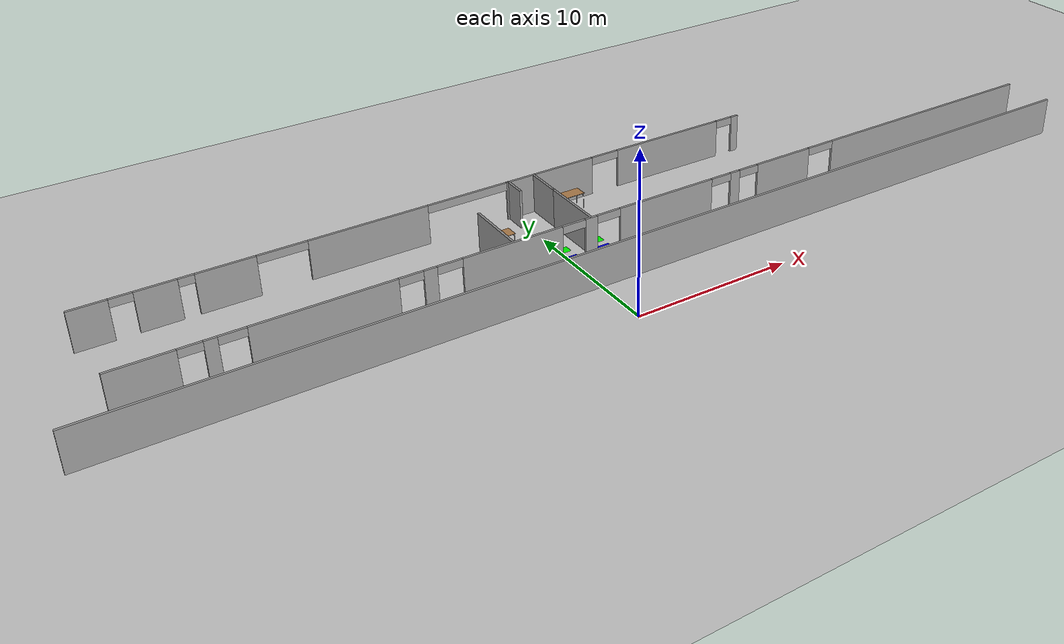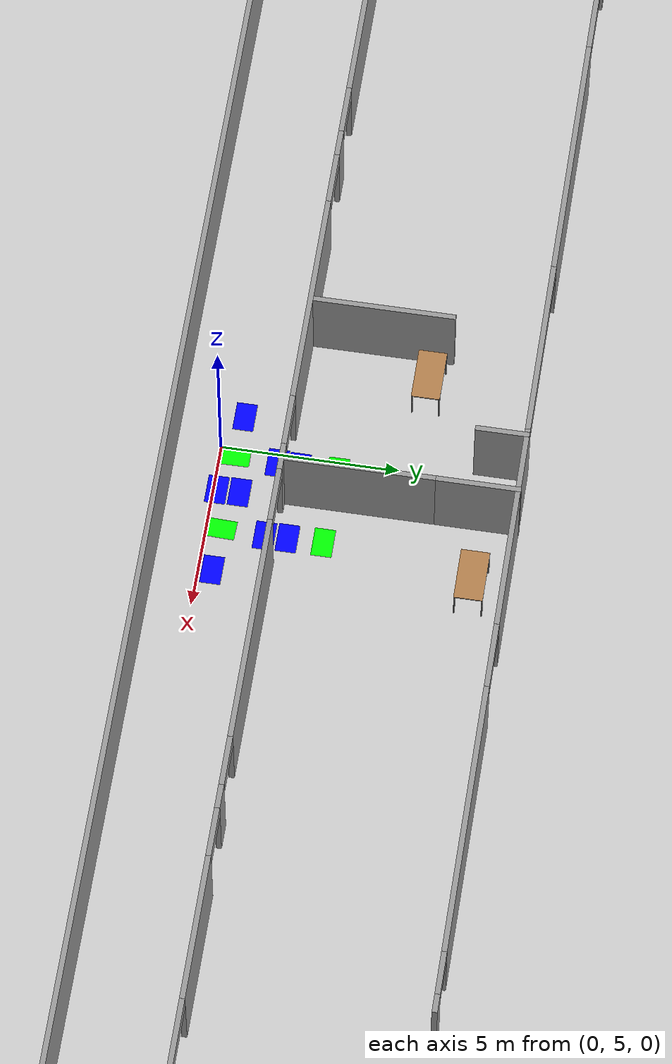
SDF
<sdf version="1.6">
 <world name="default">
  <model name="ground_plane">
   <pose>0 0 0.001 0 -0 0</pose>
   <static>1</static>
   <link name="link">
    <collision name="collision">
     <geometry><plane><normal>0 0 1</normal><size>100 100</size></plane></geometry>
     <surface><friction><ode><mu>100</mu><mu2>50</mu2></ode></friction></surface>
    </collision>
    <visual name="visual">
     <cast_shadows>0</cast_shadows>
     <geometry><plane><normal>0 0 1</normal><size>100 100</size></plane></geometry>
     <material>
      <script><uri>file://media/materials/scripts/gazebo.material</uri><name>Gazebo/Grey</name></script>
     </material>
    </visual>
   </link>
  </model>
  <model name="table_7">
   <static>1</static>
   <link name="link">
    <collision name="surface">
     <pose>0 0 1 0 -0 0</pose>
     <geometry><box><size>1.5 0.8 0.03</size></box></geometry>
     <surface><friction><ode><mu>0.6</mu><mu2>0.6</mu2></ode></friction></surface>
    </collision>
    <visual name="visual1">
     <pose>0 0 1 0 -0 0</pose>
     <geometry><box><size>1.5 0.8 0.03</size></box></geometry>
     <material>
      <script><uri>file://media/materials/scripts/gazebo.material</uri><name>Gazebo/Wood</name></script>
     </material>
    </visual>
    <collision name="front_left_leg">
     <pose>0.68 0.38 0.5 0 -0 0</pose>
     <geometry><cylinder><radius>0.02</radius><length>1</length></cylinder></geometry>
    </collision>
    <visual name="front_left_leg">
     <pose>0.68 0.38 0.5 0 -0 0</pose>
     <geometry><cylinder><radius>0.02</radius><length>1</length></cylinder></geometry>
     <material>
      <script><uri>file://media/materials/scripts/gazebo.material</uri><name>Gazebo/Grey</name></script>
     </material>
    </visual>
    <collision name="front_right_leg">
     <pose>0.68 -0.38 0.5 0 -0 0</pose>
     <geometry><cylinder><radius>0.02</radius><length>1</length></cylinder></geometry>
    </collision>
    <visual name="front_right_leg">
     <pose>0.68 -0.38 0.5 0 -0 0</pose>
     <geometry><cylinder><radius>0.02</radius><length>1</length></cylinder></geometry>
     <material>
      <script><uri>file://media/materials/scripts/gazebo.material</uri><name>Gazebo/Grey</name></script>
     </material>
    </visual>
    <collision name="back_right_leg">
     <pose>-0.68 -0.38 0.5 0 -0 0</pose>
     <geometry><cylinder><radius>0.02</radius><length>1</length></cylinder></geometry>
    </collision>
    <visual name="back_right_leg">
     <pose>-0.68 -0.38 0.5 0 -0 0</pose>
     <geometry><cylinder><radius>0.02</radius><length>1</length></cylinder></geometry>
     <material>
      <script><uri>file://media/materials/scripts/gazebo.material</uri><name>Gazebo/Grey</name></script>
     </material>
    </visual>
    <collision name="back_left_leg">
     <pose>-0.68 0.38 0.5 0 -0 0</pose>
     <geometry><cylinder><radius>0.02</radius><length>1</length></cylinder></geometry>
    </collision>
    <visual name="back_left_leg">
     <pose>-0.68 0.38 0.5 0 -0 0</pose>
     <geometry><cylinder><radius>0.02</radius><length>1</length></cylinder></geometry>
     <material>
      <script><uri>file://media/materials/scripts/gazebo.material</uri><name>Gazebo/Grey</name></script>
     </material>
    </visual>
   </link>
   <pose>-2.6011 10.4538 0.001 0 -0 0</pose>
  </model>
  <model name="table_10">
   <static>1</static>
   <link name="link">
    <collision name="surface">
     <pose>0 0 1 0 -0 0</pose>
     <geometry><box><size>1.5 0.8 0.03</size></box></geometry>
     <surface><friction><ode><mu>0.6</mu><mu2>0.6</mu2></ode></friction></surface>
    </collision>
    <visual name="visual1">
     <pose>0 0 1 0 -0 0</pose>
     <geometry><box><size>1.5 0.8 0.03</size></box></geometry>
     <material>
      <script><uri>file://media/materials/scripts/gazebo.material</uri><name>Gazebo/Wood</name></script>
     </material>
    </visual>
    <collision name="front_left_leg">
     <pose>0.68 0.38 0.5 0 -0 0</pose>
     <geometry><cylinder><radius>0.02</radius><length>1</length></cylinder></geometry>
    </collision>
    <visual name="front_left_leg">
     <pose>0.68 0.38 0.5 0 -0 0</pose>
     <geometry><cylinder><radius>0.02</radius><length>1</length></cylinder></geometry>
     <material>
      <script><uri>file://media/materials/scripts/gazebo.material</uri><name>Gazebo/Grey</name></script>
     </material>
    </visual>
    <collision name="front_right_leg">
     <pose>0.68 -0.38 0.5 0 -0 0</pose>
     <geometry><cylinder><radius>0.02</radius><length>1</length></cylinder></geometry>
    </collision>
    <visual name="front_right_leg">
     <pose>0.68 -0.38 0.5 0 -0 0</pose>
     <geometry><cylinder><radius>0.02</radius><length>1</length></cylinder></geometry>
     <material>
      <script><uri>file://media/materials/scripts/gazebo.material</uri><name>Gazebo/Grey</name></script>
     </material>
    </visual>
    <collision name="back_right_leg">
     <pose>-0.68 -0.38 0.5 0 -0 0</pose>
     <geometry><cylinder><radius>0.02</radius><length>1</length></cylinder></geometry>
    </collision>
    <visual name="back_right_leg">
     <pose>-0.68 -0.38 0.5 0 -0 0</pose>
     <geometry><cylinder><radius>0.02</radius><length>1</length></cylinder></geometry>
     <material>
      <script><uri>file://media/materials/scripts/gazebo.material</uri><name>Gazebo/Grey</name></script>
     </material>
    </visual>
    <collision name="back_left_leg">
     <pose>-0.68 0.38 0.5 0 -0 0</pose>
     <geometry><cylinder><radius>0.02</radius><length>1</length></cylinder></geometry>
    </collision>
    <visual name="back_left_leg">
     <pose>-0.68 0.38 0.5 0 -0 0</pose>
     <geometry><cylinder><radius>0.02</radius><length>1</length></cylinder></geometry>
     <material>
      <script><uri>file://media/materials/scripts/gazebo.material</uri><name>Gazebo/Grey</name></script>
     </material>
    </visual>
   </link>
   <pose>3.46371 12.5183 0.001 0 -0 0</pose>
  </model>
  <model name="corridor_14">
   <link name="link">
    <pose>0 0 0.001 0 -0 0</pose>
    <inertial>
     <mass>0.0352517</mass>
     <inertia>
      <ixx>0.00099707</ixx>
      <ixy>0</ixy>
      <ixz>0</ixz>
      <iyy>0.00220147</iyy>
      <iyz>0</iyz>
      <izz>0.0031692</izz>
     </inertia>
     <pose>0 0 0.001 0 -0 0</pose>
    </inertial>
    <visual name="visual">
     <geometry><box><size>0.862743 0.578289 1e-06</size></box></geometry>
     <material>
      <script><name>Gazebo/Grey</name><uri>file://media/materials/scripts/gazebo.material</uri></script>
      <ambient>0 1 0 1</ambient>
      <diffuse>0 1 0 1</diffuse>
      <specular>0 1 0 1</specular>
      <emissive>0 1 0 1</emissive>
      <shader type="vertex"><normal_map>__default__</normal_map></shader>
     </material>
     <pose>0 0 0.001 0 -0 0</pose>
    </visual>
    <collision name="collision">
     <pose>0 0 0.001 0 -0 0</pose>
     <geometry><box><size>0.862743 0.578289 0.000477</size></box></geometry>
     <surface>
      <friction>
       <ode><mu>1</mu><mu2>1</mu2><fdir1>0 0 0</fdir1><slip1>0</slip1><slip2>0</slip2></ode>
       <torsional>
        <coefficient>1</coefficient>
        <patch_radius>0</patch_radius>
        <surface_radius>0</surface_radius>
        <use_patch_radius>1</use_patch_radius>
        <ode><slip>0</slip></ode>
       </torsional>
      </friction>
      <bounce><restitution_coefficient>0</restitution_coefficient><threshold>1e+06</threshold></bounce>
      <contact>
       <collide_without_contact>0</collide_without_contact>
       <collide_without_contact_bitmask>1</collide_without_contact_bitmask>
       <collide_bitmask>1</collide_bitmask>
       <ode>
        <soft_cfm>0</soft_cfm>
        <soft_erp>0.2</soft_erp>
        <kp>1e+13</kp>
        <kd>1</kd>
        <max_vel>0.01</max_vel>
        <min_depth>0</min_depth>
       </ode>
       <bullet>
        <split_impulse>1</split_impulse>
        <split_impulse_penetration_threshold>-0.01</split_impulse_penetration_threshold>
        <soft_cfm>0</soft_cfm>
        <soft_erp>0.2</soft_erp>
        <kp>1e+13</kp>
        <kd>1</kd>
       </bullet>
      </contact>
     </surface>
    </collision>
   </link>
   <static>1</static>
   <pose>2.55201 5.40625 0 0 0 -1.60524</pose>
  </model>
  <model name="intersection_24">
   <link name="link">
    <pose>0 0 0.001 0 -0 0</pose>
    <inertial>
     <mass>0.0352517</mass>
     <inertia>
      <ixx>0.000997067</ixx>
      <ixy>0</ixy>
      <ixz>0</ixz>
      <iyy>0.00220147</iyy>
      <iyz>0</iyz>
      <izz>0.0031692</izz>
     </inertia>
     <pose>0 0 0.001 0 -0 0</pose>
    </inertial>
    <visual name="visual">
     <geometry><box><size>0.862743 0.578289 1e-06</size></box></geometry>
     <material>
      <script><name>Gazebo/Grey</name><uri>file://media/materials/scripts/gazebo.material</uri></script>
      <ambient>0 0 1 1</ambient>
      <diffuse>0 0 1 1</diffuse>
      <specular>0 0 1 1</specular>
      <emissive>0 0 1 1</emissive>
      <shader type="vertex"><normal_map>__default__</normal_map></shader>
     </material>
     <pose>0 0 0.001 0 -0 0</pose>
    </visual>
    <collision name="collision">
     <pose>0 0 0.001 0 -0 0</pose>
     <geometry><box><size>0.862743 0.578289 0.000477</size></box></geometry>
     <surface>
      <friction>
       <ode><mu>1</mu><mu2>1</mu2><fdir1>0 0 0</fdir1><slip1>0</slip1><slip2>0</slip2></ode>
       <torsional>
        <coefficient>1</coefficient>
        <patch_radius>0</patch_radius>
        <surface_radius>0</surface_radius>
        <use_patch_radius>1</use_patch_radius>
        <ode><slip>0</slip></ode>
       </torsional>
      </friction>
      <bounce><restitution_coefficient>0</restitution_coefficient><threshold>1e+06</threshold></bounce>
      <contact>
       <collide_without_contact>0</collide_without_contact>
       <collide_without_contact_bitmask>1</collide_without_contact_bitmask>
       <collide_bitmask>1</collide_bitmask>
       <ode>
        <soft_cfm>0</soft_cfm>
        <soft_erp>0.2</soft_erp>
        <kp>1e+13</kp>
        <kd>1</kd>
        <max_vel>0.01</max_vel>
        <min_depth>0</min_depth>
       </ode>
       <bullet>
        <split_impulse>1</split_impulse>
        <split_impulse_penetration_threshold>-0.01</split_impulse_penetration_threshold>
        <soft_cfm>0</soft_cfm>
        <soft_erp>0.2</soft_erp>
        <kp>1e+13</kp>
        <kd>1</kd>
       </bullet>
      </contact>
     </surface>
    </collision>
   </link>
   <static>1</static>
   <pose>2.56879 7.28355 0 0 -0 0</pose>
  </model>
  <model name="corridor_15">
   <link name="link">
    <pose>0 0 0.001 0 -0 0</pose>
    <inertial>
     <mass>0.0352517</mass>
     <inertia>
      <ixx>0.00099707</ixx>
      <ixy>0</ixy>
      <ixz>0</ixz>
      <iyy>0.00220147</iyy>
      <iyz>0</iyz>
      <izz>0.0031692</izz>
     </inertia>
     <pose>0 0 0.001 0 -0 0</pose>
    </inertial>
    <visual name="visual">
     <geometry><box><size>0.862743 0.578289 1e-06</size></box></geometry>
     <material>
      <script><name>Gazebo/Grey</name><uri>file://media/materials/scripts/gazebo.material</uri></script>
      <ambient>0 1 0 1</ambient>
      <diffuse>0 1 0 1</diffuse>
      <specular>0 1 0 1</specular>
      <emissive>0 1 0 1</emissive>
      <shader type="vertex"><normal_map>__default__</normal_map></shader>
     </material>
     <pose>0 0 0.001 0 -0 0</pose>
    </visual>
    <collision name="collision">
     <pose>0 0 0.001 0 -0 0</pose>
     <geometry><box><size>0.862743 0.578289 0.000477</size></box></geometry>
     <surface>
      <friction>
       <ode><mu>1</mu><mu2>1</mu2><fdir1>0 0 0</fdir1><slip1>0</slip1><slip2>0</slip2></ode>
       <torsional>
        <coefficient>1</coefficient>
        <patch_radius>0</patch_radius>
        <surface_radius>0</surface_radius>
        <use_patch_radius>1</use_patch_radius>
        <ode><slip>0</slip></ode>
       </torsional>
      </friction>
      <bounce><restitution_coefficient>0</restitution_coefficient><threshold>1e+06</threshold></bounce>
      <contact>
       <collide_without_contact>0</collide_without_contact>
       <collide_without_contact_bitmask>1</collide_without_contact_bitmask>
       <collide_bitmask>1</collide_bitmask>
       <ode>
        <soft_cfm>0</soft_cfm>
        <soft_erp>0.2</soft_erp>
        <kp>1e+13</kp>
        <kd>1</kd>
        <max_vel>0.01</max_vel>
        <min_depth>0</min_depth>
       </ode>
       <bullet>
        <split_impulse>1</split_impulse>
        <split_impulse_penetration_threshold>-0.01</split_impulse_penetration_threshold>
        <soft_cfm>0</soft_cfm>
        <soft_erp>0.2</soft_erp>
        <kp>1e+13</kp>
        <kd>1</kd>
       </bullet>
      </contact>
     </surface>
    </collision>
   </link>
   <static>1</static>
   <pose>0.238653 5.43051 0 0 -0 1.58447</pose>
  </model>
  <model name="intersection_25">
   <link name="link">
    <pose>0 0 0.001 0 -0 0</pose>
    <inertial>
     <mass>0.0352517</mass>
     <inertia>
      <ixx>0.000997067</ixx>
      <ixy>0</ixy>
      <ixz>0</ixz>
      <iyy>0.00220147</iyy>
      <iyz>0</iyz>
      <izz>0.0031692</izz>
     </inertia>
     <pose>0 0 0.001 0 -0 0</pose>
    </inertial>
    <visual name="visual">
     <geometry><box><size>0.862743 0.578289 1e-06</size></box></geometry>
     <material>
      <script><name>Gazebo/Grey</name><uri>file://media/materials/scripts/gazebo.material</uri></script>
      <ambient>0 0 1 1</ambient>
      <diffuse>0 0 1 1</diffuse>
      <specular>0 0 1 1</specular>
      <emissive>0 0 1 1</emissive>
      <shader type="vertex"><normal_map>__default__</normal_map></shader>
     </material>
     <pose>0 0 0.001 0 -0 0</pose>
    </visual>
    <collision name="collision">
     <pose>0 0 0.001 0 -0 0</pose>
     <geometry><box><size>0.862743 0.578289 0.000477</size></box></geometry>
     <surface>
      <friction>
       <ode><mu>1</mu><mu2>1</mu2><fdir1>0 0 0</fdir1><slip1>0</slip1><slip2>0</slip2></ode>
       <torsional>
        <coefficient>1</coefficient>
        <patch_radius>0</patch_radius>
        <surface_radius>0</surface_radius>
        <use_patch_radius>1</use_patch_radius>
        <ode><slip>0</slip></ode>
       </torsional>
      </friction>
      <bounce><restitution_coefficient>0</restitution_coefficient><threshold>1e+06</threshold></bounce>
      <contact>
       <collide_without_contact>0</collide_without_contact>
       <collide_without_contact_bitmask>1</collide_without_contact_bitmask>
       <collide_bitmask>1</collide_bitmask>
       <ode>
        <soft_cfm>0</soft_cfm>
        <soft_erp>0.2</soft_erp>
        <kp>1e+13</kp>
        <kd>1</kd>
        <max_vel>0.01</max_vel>
        <min_depth>0</min_depth>
       </ode>
       <bullet>
        <split_impulse>1</split_impulse>
        <split_impulse_penetration_threshold>-0.01</split_impulse_penetration_threshold>
        <soft_cfm>0</soft_cfm>
        <soft_erp>0.2</soft_erp>
        <kp>1e+13</kp>
        <kd>1</kd>
       </bullet>
      </contact>
     </surface>
    </collision>
   </link>
   <static>1</static>
   <pose>0.294698 7.24669 0 0 -0 0</pose>
  </model>
  <model name="intersection_52">
   <link name="link">
    <pose>0 0 0.001 0 -0 0</pose>
    <inertial>
     <mass>0.0352517</mass>
     <inertia>
      <ixx>0.000997067</ixx>
      <ixy>0</ixy>
      <ixz>0</ixz>
      <iyy>0.00220147</iyy>
      <iyz>0</iyz>
      <izz>0.0031692</izz>
     </inertia>
     <pose>0 0 0.001 0 -0 0</pose>
    </inertial>
    <visual name="visual">
     <geometry><box><size>0.862743 0.578289 1e-06</size></box></geometry>
     <material>
      <script><name>Gazebo/Grey</name><uri>file://media/materials/scripts/gazebo.material</uri></script>
      <ambient>0 0 1 1</ambient>
      <diffuse>0 0 1 1</diffuse>
      <specular>0 0 1 1</specular>
      <emissive>0 0 1 1</emissive>
      <shader type="vertex"><normal_map>__default__</normal_map></shader>
     </material>
     <pose>0 0 0.001 0 -0 0</pose>
    </visual>
    <collision name="collision">
     <pose>0 0 0.001 0 -0 0</pose>
     <geometry><box><size>0.862743 0.578289 0.000477</size></box></geometry>
     <surface>
      <friction>
       <ode><mu>1</mu><mu2>1</mu2><fdir1>0 0 0</fdir1><slip1>0</slip1><slip2>0</slip2></ode>
       <torsional>
        <coefficient>1</coefficient>
        <patch_radius>0</patch_radius>
        <surface_radius>0</surface_radius>
        <use_patch_radius>1</use_patch_radius>
        <ode><slip>0</slip></ode>
       </torsional>
      </friction>
      <bounce><restitution_coefficient>0</restitution_coefficient><threshold>1e+06</threshold></bounce>
      <contact>
       <collide_without_contact>0</collide_without_contact>
       <collide_without_contact_bitmask>1</collide_without_contact_bitmask>
       <collide_bitmask>1</collide_bitmask>
       <ode>
        <soft_cfm>0</soft_cfm>
        <soft_erp>0.2</soft_erp>
        <kp>1e+13</kp>
        <kd>1</kd>
        <max_vel>0.01</max_vel>
        <min_depth>0</min_depth>
       </ode>
       <bullet>
        <split_impulse>1</split_impulse>
        <split_impulse_penetration_threshold>-0.01</split_impulse_penetration_threshold>
        <soft_cfm>0</soft_cfm>
        <soft_erp>0.2</soft_erp>
        <kp>1e+13</kp>
        <kd>1</kd>
       </bullet>
      </contact>
     </surface>
    </collision>
   </link>
   <static>1</static>
   <pose>-1.04696 5.51029 0 0 -0 0</pose>
  </model>
  <model name="intersection_53">
   <link name="link">
    <pose>0 0 0.001 0 -0 0</pose>
    <inertial>
     <mass>0.0352517</mass>
     <inertia>
      <ixx>0.000997067</ixx>
      <ixy>0</ixy>
      <ixz>0</ixz>
      <iyy>0.00220147</iyy>
      <iyz>0</iyz>
      <izz>0.0031692</izz>
     </inertia>
     <pose>0 0 0.001 0 -0 0</pose>
    </inertial>
    <visual name="visual">
     <geometry><box><size>0.862743 0.578289 1e-06</size></box></geometry>
     <material>
      <script><name>Gazebo/Grey</name><uri>file://media/materials/scripts/gazebo.material</uri></script>
      <ambient>0 0 1 1</ambient>
      <diffuse>0 0 1 1</diffuse>
      <specular>0 0 1 1</specular>
      <emissive>0 0 1 1</emissive>
      <shader type="vertex"><normal_map>__default__</normal_map></shader>
     </material>
     <pose>0 0 0.001 0 -0 0</pose>
    </visual>
    <collision name="collision">
     <pose>0 0 0.001 0 -0 0</pose>
     <geometry><box><size>0.862743 0.578289 0.000477</size></box></geometry>
     <surface>
      <friction>
       <ode><mu>1</mu><mu2>1</mu2><fdir1>0 0 0</fdir1><slip1>0</slip1><slip2>0</slip2></ode>
       <torsional>
        <coefficient>1</coefficient>
        <patch_radius>0</patch_radius>
        <surface_radius>0</surface_radius>
        <use_patch_radius>1</use_patch_radius>
        <ode><slip>0</slip></ode>
       </torsional>
      </friction>
      <bounce><restitution_coefficient>0</restitution_coefficient><threshold>1e+06</threshold></bounce>
      <contact>
       <collide_without_contact>0</collide_without_contact>
       <collide_without_contact_bitmask>1</collide_without_contact_bitmask>
       <collide_bitmask>1</collide_bitmask>
       <ode>
        <soft_cfm>0</soft_cfm>
        <soft_erp>0.2</soft_erp>
        <kp>1e+13</kp>
        <kd>1</kd>
        <max_vel>0.01</max_vel>
        <min_depth>0</min_depth>
       </ode>
       <bullet>
        <split_impulse>1</split_impulse>
        <split_impulse_penetration_threshold>-0.01</split_impulse_penetration_threshold>
        <soft_cfm>0</soft_cfm>
        <soft_erp>0.2</soft_erp>
        <kp>1e+13</kp>
        <kd>1</kd>
       </bullet>
      </contact>
     </surface>
    </collision>
   </link>
   <static>1</static>
   <pose>1.35403 5.10994 0 0 -0 0</pose>
  </model>
  <model name="intersection_54">
   <link name="link">
    <pose>0 0 0.001 0 -0 0</pose>
    <inertial>
     <mass>0.0352517</mass>
     <inertia>
      <ixx>0.000997067</ixx>
      <ixy>0</ixy>
      <ixz>0</ixz>
      <iyy>0.00220147</iyy>
      <iyz>0</iyz>
      <izz>0.0031692</izz>
     </inertia>
     <pose>0 0 0.001 0 -0 0</pose>
    </inertial>
    <visual name="visual">
     <geometry><box><size>0.862743 0.578289 1e-06</size></box></geometry>
     <material>
      <script><name>Gazebo/Grey</name><uri>file://media/materials/scripts/gazebo.material</uri></script>
      <ambient>0 0 1 1</ambient>
      <diffuse>0 0 1 1</diffuse>
      <specular>0 0 1 1</specular>
      <emissive>0 0 1 1</emissive>
      <shader type="vertex"><normal_map>__default__</normal_map></shader>
     </material>
     <pose>0 0 0.001 0 -0 0</pose>
    </visual>
    <collision name="collision">
     <pose>0 0 0.001 0 -0 0</pose>
     <geometry><box><size>0.862743 0.578289 0.000477</size></box></geometry>
     <surface>
      <friction>
       <ode><mu>1</mu><mu2>1</mu2><fdir1>0 0 0</fdir1><slip1>0</slip1><slip2>0</slip2></ode>
       <torsional>
        <coefficient>1</coefficient>
        <patch_radius>0</patch_radius>
        <surface_radius>0</surface_radius>
        <use_patch_radius>1</use_patch_radius>
        <ode><slip>0</slip></ode>
       </torsional>
      </friction>
      <bounce><restitution_coefficient>0</restitution_coefficient><threshold>1e+06</threshold></bounce>
      <contact>
       <collide_without_contact>0</collide_without_contact>
       <collide_without_contact_bitmask>1</collide_without_contact_bitmask>
       <collide_bitmask>1</collide_bitmask>
       <ode>
        <soft_cfm>0</soft_cfm>
        <soft_erp>0.2</soft_erp>
        <kp>1e+13</kp>
        <kd>1</kd>
        <max_vel>0.01</max_vel>
        <min_depth>0</min_depth>
       </ode>
       <bullet>
        <split_impulse>1</split_impulse>
        <split_impulse_penetration_threshold>-0.01</split_impulse_penetration_threshold>
        <soft_cfm>0</soft_cfm>
        <soft_erp>0.2</soft_erp>
        <kp>1e+13</kp>
        <kd>1</kd>
       </bullet>
      </contact>
     </surface>
    </collision>
   </link>
   <static>1</static>
   <pose>3.85756 5.39238 0 0 -0 0</pose>
  </model>
  <model name="Se1_cut">
   <pose>3.62364 13.9276 0 0 -0 0</pose>
   <link name="Wall_10">
    <pose>1.36862 -6.975 0 0 -0 0</pose>
    <visual name="Wall_10_Visual_0">
     <pose>-29.3076 0 1.25 0 -0 0</pose>
     <geometry><box><size>3.63484 0.15 2.5</size></box></geometry>
     <material>
      <script><uri>file://media/materials/scripts/gazebo.material</uri><name>Gazebo/Grey</name></script>
      <ambient>1 1 1 1</ambient>
     </material>
    </visual>
    <collision name="Wall_10_Collision_0">
     <geometry><box><size>3.63484 0.15 2.5</size></box></geometry>
     <pose>-29.3076 0 1.25 0 -0 0</pose>
    </collision>
    <visual name="Wall_10_Visual_1">
     <pose>-25.817 0 1.25 0 -0 0</pose>
     <geometry><box><size>0.713595 0.15 2.5</size></box></geometry>
     <material>
      <script><uri>file://media/materials/scripts/gazebo.material</uri><name>Gazebo/Grey</name></script>
      <ambient>1 1 1 1</ambient>
     </material>
    </visual>
    <collision name="Wall_10_Collision_1">
     <geometry><box><size>0.713595 0.15 2.5</size></box></geometry>
     <pose>-25.817 0 1.25 0 -0 0</pose>
    </collision>
    <visual name="Wall_10_Visual_2">
     <pose>-19.8 0 1.25 0 -0 0</pose>
     <geometry><box><size>8.27129 0.15 2.5</size></box></geometry>
     <material>
      <script><uri>file://media/materials/scripts/gazebo.material</uri><name>Gazebo/Grey</name></script>
      <ambient>1 1 1 1</ambient>
     </material>
    </visual>
    <collision name="Wall_10_Collision_2">
     <geometry><box><size>8.27129 0.15 2.5</size></box></geometry>
     <pose>-19.8 0 1.25 0 -0 0</pose>
    </collision>
    <visual name="Wall_10_Visual_3">
     <pose>-13.8092 0 1.25 0 -0 0</pose>
     <geometry><box><size>0.8001 0.15 2.5</size></box></geometry>
     <material>
      <script><uri>file://media/materials/scripts/gazebo.material</uri><name>Gazebo/Grey</name></script>
      <ambient>1 1 1 1</ambient>
     </material>
    </visual>
    <collision name="Wall_10_Collision_3">
     <geometry><box><size>0.8001 0.15 2.5</size></box></geometry>
     <pose>-13.8092 0 1.25 0 -0 0</pose>
    </collision>
    <visual name="Wall_10_Visual_4">
     <pose>-8.68578 0 1.25 0 -0 0</pose>
     <geometry><box><size>6.35145 0.15 2.5</size></box></geometry>
     <material>
      <script><uri>file://media/materials/scripts/gazebo.material</uri><name>Gazebo/Grey</name></script>
      <ambient>1 1 1 1</ambient>
     </material>
    </visual>
    <collision name="Wall_10_Collision_4">
     <geometry><box><size>6.35145 0.15 2.5</size></box></geometry>
     <pose>-8.68578 0 1.25 0 -0 0</pose>
    </collision>
    <visual name="Wall_10_Visual_5">
     <pose>-3.58549 0 1.25 0 -0 0</pose>
     <geometry><box><size>0.8001 0.15 2.5</size></box></geometry>
     <material>
      <script><uri>file://media/materials/scripts/gazebo.material</uri><name>Gazebo/Grey</name></script>
      <ambient>1 1 1 1</ambient>
     </material>
    </visual>
    <collision name="Wall_10_Collision_5">
     <geometry><box><size>0.8001 0.15 2.5</size></box></geometry>
     <pose>-3.58549 0 1.25 0 -0 0</pose>
    </collision>
    <visual name="Wall_10_Visual_6">
     <pose>1.72877 0 1.25 0 -0 0</pose>
     <geometry><box><size>6.64058 0.15 2.5</size></box></geometry>
     <material>
      <script><uri>file://media/materials/scripts/gazebo.material</uri><name>Gazebo/Grey</name></script>
      <ambient>1 1 1 1</ambient>
     </material>
    </visual>
    <collision name="Wall_10_Collision_6">
     <geometry><box><size>6.64058 0.15 2.5</size></box></geometry>
     <pose>1.72877 0 1.25 0 -0 0</pose>
    </collision>
    <visual name="Wall_10_Visual_7">
     <pose>6.82907 0 1.25 0 -0 0</pose>
     <geometry><box><size>0.696012 0.15 2.5</size></box></geometry>
     <material>
      <script><uri>file://media/materials/scripts/gazebo.material</uri><name>Gazebo/Grey</name></script>
      <ambient>1 1 1 1</ambient>
     </material>
    </visual>
    <collision name="Wall_10_Collision_7">
     <geometry><box><size>0.696012 0.15 2.5</size></box></geometry>
     <pose>6.82907 0 1.25 0 -0 0</pose>
    </collision>
    <visual name="Wall_10_Visual_8">
     <pose>10.6539 0 1.25 0 -0 0</pose>
     <geometry><box><size>4.13586 0.15 2.5</size></box></geometry>
     <material>
      <script><uri>file://media/materials/scripts/gazebo.material</uri><name>Gazebo/Grey</name></script>
      <ambient>1 1 1 1</ambient>
     </material>
    </visual>
    <collision name="Wall_10_Collision_8">
     <geometry><box><size>4.13586 0.15 2.5</size></box></geometry>
     <pose>10.6539 0 1.25 0 -0 0</pose>
    </collision>
    <visual name="Wall_10_Visual_9">
     <pose>22.8921 0 1.25 0 -0 0</pose>
     <geometry><box><size>16.4658 0.15 2.5</size></box></geometry>
     <material>
      <script><uri>file://media/materials/scripts/gazebo.material</uri><name>Gazebo/Grey</name></script>
      <ambient>1 1 1 1</ambient>
     </material>
    </visual>
    <collision name="Wall_10_Collision_9">
     <geometry><box><size>16.4658 0.15 2.5</size></box></geometry>
     <pose>22.8921 0 1.25 0 -0 0</pose>
    </collision>
    <visual name="Wall_10_Visual_10">
     <pose>-26.832 0 2.25 0 -0 0</pose>
     <geometry><box><size>1.31635 0.15 0.5</size></box></geometry>
     <material>
      <script><uri>file://media/materials/scripts/gazebo.material</uri><name>Gazebo/Grey</name></script>
      <ambient>1 1 1 1</ambient>
     </material>
    </visual>
    <collision name="Wall_10_Collision_10">
     <geometry><box><size>1.31635 0.15 0.5</size></box></geometry>
     <pose>-26.832 0 2.25 0 -0 0</pose>
    </collision>
    <visual name="Wall_10_Visual_11">
     <pose>-24.6979 0 2.25 0 -0 0</pose>
     <geometry><box><size>1.52453 0.15 0.5</size></box></geometry>
     <material>
      <script><uri>file://media/materials/scripts/gazebo.material</uri><name>Gazebo/Grey</name></script>
      <ambient>1 1 1 1</ambient>
     </material>
    </visual>
    <collision name="Wall_10_Collision_11">
     <geometry><box><size>1.52453 0.15 0.5</size></box></geometry>
     <pose>-24.6979 0 2.25 0 -0 0</pose>
    </collision>
    <visual name="Wall_10_Visual_12">
     <pose>-14.9368 0 2.25 0 -0 0</pose>
     <geometry><box><size>1.45514 0.15 0.5</size></box></geometry>
     <material>
      <script><uri>file://media/materials/scripts/gazebo.material</uri><name>Gazebo/Grey</name></script>
      <ambient>1 1 1 1</ambient>
     </material>
    </visual>
    <collision name="Wall_10_Collision_12">
     <geometry><box><size>1.45514 0.15 0.5</size></box></geometry>
     <pose>-14.9368 0 2.25 0 -0 0</pose>
    </collision>
    <visual name="Wall_10_Visual_13">
     <pose>-12.6353 0 2.25 0 -0 0</pose>
     <geometry><box><size>1.54766 0.15 0.5</size></box></geometry>
     <material>
      <script><uri>file://media/materials/scripts/gazebo.material</uri><name>Gazebo/Grey</name></script>
      <ambient>1 1 1 1</ambient>
     </material>
    </visual>
    <collision name="Wall_10_Collision_13">
     <geometry><box><size>1.54766 0.15 0.5</size></box></geometry>
     <pose>-12.6353 0 2.25 0 -0 0</pose>
    </collision>
    <visual name="Wall_10_Visual_14">
     <pose>-4.7478 0 2.25 0 -0 0</pose>
     <geometry><box><size>1.52453 0.15 0.5</size></box></geometry>
     <material>
      <script><uri>file://media/materials/scripts/gazebo.material</uri><name>Gazebo/Grey</name></script>
      <ambient>1 1 1 1</ambient>
     </material>
    </visual>
    <collision name="Wall_10_Collision_14">
     <geometry><box><size>1.52453 0.15 0.5</size></box></geometry>
     <pose>-4.7478 0 2.25 0 -0 0</pose>
    </collision>
    <visual name="Wall_10_Visual_15">
     <pose>-2.38848 0 2.25 0 -0 0</pose>
     <geometry><box><size>1.59392 0.15 0.5</size></box></geometry>
     <material>
      <script><uri>file://media/materials/scripts/gazebo.material</uri><name>Gazebo/Grey</name></script>
      <ambient>1 1 1 1</ambient>
     </material>
    </visual>
    <collision name="Wall_10_Collision_15">
     <geometry><box><size>1.59392 0.15 0.5</size></box></geometry>
     <pose>-2.38848 0 2.25 0 -0 0</pose>
    </collision>
    <visual name="Wall_10_Visual_16">
     <pose>5.76506 0 2.25 0 -0 0</pose>
     <geometry><box><size>1.432 0.15 0.5</size></box></geometry>
     <material>
      <script><uri>file://media/materials/scripts/gazebo.material</uri><name>Gazebo/Grey</name></script>
      <ambient>1 1 1 1</ambient>
     </material>
    </visual>
    <collision name="Wall_10_Collision_16">
     <geometry><box><size>1.432 0.15 0.5</size></box></geometry>
     <pose>5.76506 0 2.25 0 -0 0</pose>
    </collision>
    <visual name="Wall_10_Visual_17">
     <pose>7.88151 0 2.25 0 -0 0</pose>
     <geometry><box><size>1.40887 0.15 0.5</size></box></geometry>
     <material>
      <script><uri>file://media/materials/scripts/gazebo.material</uri><name>Gazebo/Grey</name></script>
      <ambient>1 1 1 1</ambient>
     </material>
    </visual>
    <collision name="Wall_10_Collision_17">
     <geometry><box><size>1.40887 0.15 0.5</size></box></geometry>
     <pose>7.88151 0 2.25 0 -0 0</pose>
    </collision>
    <visual name="Wall_10_Visual_18">
     <pose>13.6905 0 2.25 0 -0 0</pose>
     <geometry><box><size>1.93741 0.15 0.5</size></box></geometry>
     <material>
      <script><uri>file://media/materials/scripts/gazebo.material</uri><name>Gazebo/Grey</name></script>
      <ambient>1 1 1 1</ambient>
     </material>
    </visual>
    <collision name="Wall_10_Collision_18">
     <geometry><box><size>1.93741 0.15 0.5</size></box></geometry>
     <pose>13.6905 0 2.25 0 -0 0</pose>
    </collision>
   </link>
   <link name="Wall_15">
    <pose>-8.15027 -0.45807 0 0 -0 0</pose>
    <visual name="Wall_15_Visual_0">
     <pose>-20.5479 0 1.25 0 -0 0</pose>
     <geometry><box><size>2.15424 0.15 2.5</size></box></geometry>
     <material>
      <script><uri>file://media/materials/scripts/gazebo.material</uri><name>Gazebo/Grey</name></script>
      <ambient>1 1 1 1</ambient>
     </material>
    </visual>
    <collision name="Wall_15_Collision_0">
     <geometry><box><size>2.15424 0.15 2.5</size></box></geometry>
     <pose>-20.5479 0 1.25 0 -0 0</pose>
    </collision>
    <visual name="Wall_15_Visual_1">
     <pose>-17.0143 0 1.25 0 -0 0</pose>
     <geometry><box><size>2.34337 0.15 2.5</size></box></geometry>
     <material>
      <script><uri>file://media/materials/scripts/gazebo.material</uri><name>Gazebo/Grey</name></script>
      <ambient>1 1 1 1</ambient>
     </material>
    </visual>
    <collision name="Wall_15_Collision_1">
     <geometry><box><size>2.34337 0.15 2.5</size></box></geometry>
     <pose>-17.0143 0 1.25 0 -0 0</pose>
    </collision>
    <visual name="Wall_15_Visual_2">
     <pose>-13.2326 0 1.25 0 -0 0</pose>
     <geometry><box><size>3.42005 0.15 2.5</size></box></geometry>
     <material>
      <script><uri>file://media/materials/scripts/gazebo.material</uri><name>Gazebo/Grey</name></script>
      <ambient>1 1 1 1</ambient>
     </material>
    </visual>
    <collision name="Wall_15_Collision_2">
     <geometry><box><size>3.42005 0.15 2.5</size></box></geometry>
     <pose>-13.2326 0 1.25 0 -0 0</pose>
    </collision>
    <visual name="Wall_15_Visual_3">
     <pose>-4.87122 0 1.25 0 -0 0</pose>
     <geometry><box><size>7.37503 0.15 2.5</size></box></geometry>
     <material>
      <script><uri>file://media/materials/scripts/gazebo.material</uri><name>Gazebo/Grey</name></script>
      <ambient>1 1 1 1</ambient>
     </material>
    </visual>
    <collision name="Wall_15_Collision_3">
     <geometry><box><size>7.37503 0.15 2.5</size></box></geometry>
     <pose>-4.87122 0 1.25 0 -0 0</pose>
    </collision>
    <visual name="Wall_15_Visual_4">
     <pose>7.10743 0 1.25 0 -0 0</pose>
     <geometry><box><size>6.08516 0.15 2.5</size></box></geometry>
     <material>
      <script><uri>file://media/materials/scripts/gazebo.material</uri><name>Gazebo/Grey</name></script>
      <ambient>1 1 1 1</ambient>
     </material>
    </visual>
    <collision name="Wall_15_Collision_4">
     <geometry><box><size>6.08516 0.15 2.5</size></box></geometry>
     <pose>7.10743 0 1.25 0 -0 0</pose>
    </collision>
    <visual name="Wall_15_Visual_5">
     <pose>15.9605 0 1.25 0 -0 0</pose>
     <geometry><box><size>7.83181 0.15 2.5</size></box></geometry>
     <material>
      <script><uri>file://media/materials/scripts/gazebo.material</uri><name>Gazebo/Grey</name></script>
      <ambient>1 1 1 1</ambient>
     </material>
    </visual>
    <collision name="Wall_15_Collision_5">
     <geometry><box><size>7.83181 0.15 2.5</size></box></geometry>
     <pose>15.9605 0 1.25 0 -0 0</pose>
    </collision>
    <visual name="Wall_15_Visual_6">
     <pose>21.3626 0 1.25 0 -0 0</pose>
     <geometry><box><size>0.524744 0.15 2.5</size></box></geometry>
     <material>
      <script><uri>file://media/materials/scripts/gazebo.material</uri><name>Gazebo/Grey</name></script>
      <ambient>1 1 1 1</ambient>
     </material>
    </visual>
    <collision name="Wall_15_Collision_6">
     <geometry><box><size>0.524744 0.15 2.5</size></box></geometry>
     <pose>21.3626 0 1.25 0 -0 0</pose>
    </collision>
    <visual name="Wall_15_Visual_7">
     <pose>-18.8284 0 2.25 0 -0 0</pose>
     <geometry><box><size>1.28478 0.15 0.5</size></box></geometry>
     <material>
      <script><uri>file://media/materials/scripts/gazebo.material</uri><name>Gazebo/Grey</name></script>
      <ambient>1 1 1 1</ambient>
     </material>
    </visual>
    <collision name="Wall_15_Collision_7">
     <geometry><box><size>1.28478 0.15 0.5</size></box></geometry>
     <pose>-18.8284 0 2.25 0 -0 0</pose>
    </collision>
    <visual name="Wall_15_Visual_8">
     <pose>-15.3926 0 2.25 0 -0 0</pose>
     <geometry><box><size>0.9 0.15 0.5</size></box></geometry>
     <material>
      <script><uri>file://media/materials/scripts/gazebo.material</uri><name>Gazebo/Grey</name></script>
      <ambient>1 1 1 1</ambient>
     </material>
    </visual>
    <collision name="Wall_15_Collision_8">
     <geometry><box><size>0.9 0.15 0.5</size></box></geometry>
     <pose>-15.3926 0 2.25 0 -0 0</pose>
    </collision>
    <visual name="Wall_15_Visual_9">
     <pose>-10.0406 0 2.25 0 -0 0</pose>
     <geometry><box><size>2.96383 0.15 0.5</size></box></geometry>
     <material>
      <script><uri>file://media/materials/scripts/gazebo.material</uri><name>Gazebo/Grey</name></script>
      <ambient>1 1 1 1</ambient>
     </material>
    </visual>
    <collision name="Wall_15_Collision_9">
     <geometry><box><size>2.96383 0.15 0.5</size></box></geometry>
     <pose>-10.0406 0 2.25 0 -0 0</pose>
    </collision>
    <visual name="Wall_15_Visual_10">
     <pose>1.44057 0 2.25 0 -0 0</pose>
     <geometry><box><size>5.24855 0.15 0.5</size></box></geometry>
     <material>
      <script><uri>file://media/materials/scripts/gazebo.material</uri><name>Gazebo/Grey</name></script>
      <ambient>1 1 1 1</ambient>
     </material>
    </visual>
    <collision name="Wall_15_Collision_10">
     <geometry><box><size>5.24855 0.15 0.5</size></box></geometry>
     <pose>1.44057 0 2.25 0 -0 0</pose>
    </collision>
    <visual name="Wall_15_Visual_11">
     <pose>11.0973 0 2.25 0 -0 0</pose>
     <geometry><box><size>1.89462 0.15 0.5</size></box></geometry>
     <material>
      <script><uri>file://media/materials/scripts/gazebo.material</uri><name>Gazebo/Grey</name></script>
      <ambient>1 1 1 1</ambient>
     </material>
    </visual>
    <collision name="Wall_15_Collision_11">
     <geometry><box><size>1.89462 0.15 0.5</size></box></geometry>
     <pose>11.0973 0 2.25 0 -0 0</pose>
    </collision>
    <visual name="Wall_15_Visual_12">
     <pose>20.4883 0 2.25 0 -0 0</pose>
     <geometry><box><size>1.22383 0.15 0.5</size></box></geometry>
     <material>
      <script><uri>file://media/materials/scripts/gazebo.material</uri><name>Gazebo/Grey</name></script>
      <ambient>1 1 1 1</ambient>
     </material>
    </visual>
    <collision name="Wall_15_Collision_12">
     <geometry><box><size>1.22383 0.15 0.5</size></box></geometry>
     <pose>20.4883 0 2.25 0 -0 0</pose>
    </collision>
   </link>
   <link name="Wall_3">
    <collision name="Wall_3_Collision">
     <geometry><box><size>65.25 0.15 2.5</size></box></geometry>
     <pose>0 0 1.25 0 -0 0</pose>
    </collision>
    <visual name="Wall_3_Visual">
     <pose>0 0 1.25 0 -0 0</pose>
     <geometry><box><size>65.25 0.15 2.5</size></box></geometry>
     <material>
      <script><uri>file://media/materials/scripts/gazebo.material</uri><name>Gazebo/Grey</name></script>
      <ambient>1 1 1 1</ambient>
     </material>
    </visual>
    <pose>-0.031375 -10.225 0 0 -0 0</pose>
   </link>
   <link name="Wall_33">
    <collision name="Wall_33_Collision">
     <geometry><box><size>1.5 0.15 2.5</size></box></geometry>
     <pose>0 0 1.25 0 -0 0</pose>
    </collision>
    <visual name="Wall_33_Visual">
     <pose>0 0 1.25 0 -0 0</pose>
     <geometry><box><size>1.5 0.15 2.5</size></box></geometry>
     <material>
      <script><uri>file://media/materials/scripts/gazebo.material</uri><name>Gazebo/Grey</name></script>
      <ambient>1 1 1 1</ambient>
     </material>
    </visual>
    <pose>-3.911 -1.13352 0 0 0 -1.5708</pose>
   </link>
   <link name="Wall_35">
    <collision name="Wall_35_Collision">
     <geometry><box><size>2.5 0.15 2.5</size></box></geometry>
     <pose>0 0 1.25 0 -0 0</pose>
    </collision>
    <visual name="Wall_35_Visual">
     <pose>0 0 1.25 0 -0 0</pose>
     <geometry><box><size>2.5 0.15 2.5</size></box></geometry>
     <material>
      <script><uri>file://media/materials/scripts/gazebo.material</uri><name>Gazebo/Grey</name></script>
      <ambient>1 1 1 1</ambient>
     </material>
    </visual>
    <pose>-2.181 -1.62352 0 0 0 -1.5708</pose>
   </link>
   <link name="Wall_93">
    <collision name="Wall_93_Collision">
     <geometry><box><size>4 0.15 2.5</size></box></geometry>
     <pose>0 0 1.25 0 -0 0</pose>
    </collision>
    <visual name="Wall_93_Visual">
     <pose>0 0 1.25 0 -0 0</pose>
     <geometry><box><size>4 0.15 2.5</size></box></geometry>
     <material>
      <script><uri>file://media/materials/scripts/gazebo.material</uri><name>Gazebo/Grey</name></script>
      <ambient>1 1 1 1</ambient>
     </material>
    </visual>
    <pose>-7.29761 -4.91186 0 0 0 -1.5708</pose>
   </link>
   <link name="Wall_95">
    <collision name="Wall_95_Collision">
     <geometry><box><size>4.25 0.15 2.5</size></box></geometry>
     <pose>0 0 1.25 0 -0 0</pose>
    </collision>
    <visual name="Wall_95_Visual">
     <pose>0 0 1.25 0 -0 0</pose>
     <geometry><box><size>4.25 0.15 2.5</size></box></geometry>
     <material>
      <script><uri>file://media/materials/scripts/gazebo.material</uri><name>Gazebo/Grey</name></script>
      <ambient>1 1 1 1</ambient>
     </material>
    </visual>
    <pose>-2.181 -4.84852 0 0 0 -1.5708</pose>
   </link>
   <static>1</static>
  </model>
  <model name="intersection_61">
   <link name="link">
    <pose>0 0 0.001 0 -0 0</pose>
    <inertial>
     <mass>0.0352517</mass>
     <inertia>
      <ixx>0.000997067</ixx>
      <ixy>0</ixy>
      <ixz>0</ixz>
      <iyy>0.00220147</iyy>
      <iyz>0</iyz>
      <izz>0.0031692</izz>
     </inertia>
     <pose>0 0 0.001 0 -0 0</pose>
    </inertial>
    <visual name="visual">
     <geometry><box><size>0.862743 0.578289 1e-06</size></box></geometry>
     <material>
      <script><name>Gazebo/Grey</name><uri>file://media/materials/scripts/gazebo.material</uri></script>
      <ambient>0 0 1 1</ambient>
      <diffuse>0 0 1 1</diffuse>
      <specular>0 0 1 1</specular>
      <emissive>0 0 1 1</emissive>
      <shader type="vertex"><normal_map>__default__</normal_map></shader>
     </material>
     <pose>0 0 0.001 0 -0 0</pose>
    </visual>
    <collision name="collision">
     <pose>0 0 0.001 0 -0 0</pose>
     <geometry><box><size>0.862743 0.578289 0.000477</size></box></geometry>
     <surface>
      <friction>
       <ode><mu>1</mu><mu2>1</mu2><fdir1>0 0 0</fdir1><slip1>0</slip1><slip2>0</slip2></ode>
       <torsional>
        <coefficient>1</coefficient>
        <patch_radius>0</patch_radius>
        <surface_radius>0</surface_radius>
        <use_patch_radius>1</use_patch_radius>
        <ode><slip>0</slip></ode>
       </torsional>
      </friction>
      <bounce><restitution_coefficient>0</restitution_coefficient><threshold>1e+06</threshold></bounce>
      <contact>
       <collide_without_contact>0</collide_without_contact>
       <collide_without_contact_bitmask>1</collide_without_contact_bitmask>
       <collide_bitmask>1</collide_bitmask>
       <ode>
        <soft_cfm>0</soft_cfm>
        <soft_erp>0.2</soft_erp>
        <kp>1e+13</kp>
        <kd>1</kd>
        <max_vel>0.01</max_vel>
        <min_depth>0</min_depth>
       </ode>
       <bullet>
        <split_impulse>1</split_impulse>
        <split_impulse_penetration_threshold>-0.01</split_impulse_penetration_threshold>
        <soft_cfm>0</soft_cfm>
        <soft_erp>0.2</soft_erp>
        <kp>1e+13</kp>
        <kd>1</kd>
       </bullet>
      </contact>
     </surface>
    </collision>
   </link>
   <static>1</static>
   <pose>0.265023 6.62912 0 0 -0 0</pose>
  </model>
  <model name="intersection_64">
   <link name="link">
    <pose>0 0 0.001 0 -0 0</pose>
    <inertial>
     <mass>0.0352517</mass>
     <inertia>
      <ixx>0.000997067</ixx>
      <ixy>0</ixy>
      <ixz>0</ixz>
      <iyy>0.00220147</iyy>
      <iyz>0</iyz>
      <izz>0.0031692</izz>
     </inertia>
     <pose>0 0 0.001 0 -0 0</pose>
    </inertial>
    <visual name="visual">
     <geometry><box><size>0.862743 0.578289 1e-06</size></box></geometry>
     <material>
      <script><name>Gazebo/Grey</name><uri>file://media/materials/scripts/gazebo.material</uri></script>
      <ambient>0 0 1 1</ambient>
      <diffuse>0 0 1 1</diffuse>
      <specular>0 0 1 1</specular>
      <emissive>0 0 1 1</emissive>
      <shader type="vertex"><normal_map>__default__</normal_map></shader>
     </material>
     <pose>0 0 0.001 0 -0 0</pose>
    </visual>
    <collision name="collision">
     <pose>0 0 0.001 0 -0 0</pose>
     <geometry><box><size>0.862743 0.578289 0.000477</size></box></geometry>
     <surface>
      <friction>
       <ode><mu>1</mu><mu2>1</mu2><fdir1>0 0 0</fdir1><slip1>0</slip1><slip2>0</slip2></ode>
       <torsional>
        <coefficient>1</coefficient>
        <patch_radius>0</patch_radius>
        <surface_radius>0</surface_radius>
        <use_patch_radius>1</use_patch_radius>
        <ode><slip>0</slip></ode>
       </torsional>
      </friction>
      <bounce><restitution_coefficient>0</restitution_coefficient><threshold>1e+06</threshold></bounce>
      <contact>
       <collide_without_contact>0</collide_without_contact>
       <collide_without_contact_bitmask>1</collide_without_contact_bitmask>
       <collide_bitmask>1</collide_bitmask>
       <ode>
        <soft_cfm>0</soft_cfm>
        <soft_erp>0.2</soft_erp>
        <kp>1e+13</kp>
        <kd>1</kd>
        <max_vel>0.01</max_vel>
        <min_depth>0</min_depth>
       </ode>
       <bullet>
        <split_impulse>1</split_impulse>
        <split_impulse_penetration_threshold>-0.01</split_impulse_penetration_threshold>
        <soft_cfm>0</soft_cfm>
        <soft_erp>0.2</soft_erp>
        <kp>1e+13</kp>
        <kd>1</kd>
       </bullet>
      </contact>
     </surface>
    </collision>
   </link>
   <static>1</static>
   <pose>2.58424 6.64608 0 0 -0 0</pose>
  </model>
  <model name="intersection_73">
   <link name="link">
    <pose>0 0 0.001 0 -0 0</pose>
    <inertial>
     <mass>0.0352517</mass>
     <inertia>
      <ixx>0.000997067</ixx>
      <ixy>0</ixy>
      <ixz>0</ixz>
      <iyy>0.00220147</iyy>
      <iyz>0</iyz>
      <izz>0.0031692</izz>
     </inertia>
     <pose>0 0 0.001 0 -0 0</pose>
    </inertial>
    <visual name="visual">
     <geometry><box><size>0.862743 0.578289 1e-06</size></box></geometry>
     <material>
      <script><name>Gazebo/Grey</name><uri>file://media/materials/scripts/gazebo.material</uri></script>
      <ambient>0 0 1 1</ambient>
      <diffuse>0 0 1 1</diffuse>
      <specular>0 0 1 1</specular>
      <emissive>0 0 1 1</emissive>
      <shader type="vertex"><normal_map>__default__</normal_map></shader>
     </material>
     <pose>0 0 0.001 0 -0 0</pose>
    </visual>
    <collision name="collision">
     <pose>0 0 0.001 0 -0 0</pose>
     <geometry><box><size>0.862743 0.578289 0.000477</size></box></geometry>
     <surface>
      <friction>
       <ode><mu>1</mu><mu2>1</mu2><fdir1>0 0 0</fdir1><slip1>0</slip1><slip2>0</slip2></ode>
       <torsional>
        <coefficient>1</coefficient>
        <patch_radius>0</patch_radius>
        <surface_radius>0</surface_radius>
        <use_patch_radius>1</use_patch_radius>
        <ode><slip>0</slip></ode>
       </torsional>
      </friction>
      <bounce><restitution_coefficient>0</restitution_coefficient><threshold>1e+06</threshold></bounce>
      <contact>
       <collide_without_contact>0</collide_without_contact>
       <collide_without_contact_bitmask>1</collide_without_contact_bitmask>
       <collide_bitmask>1</collide_bitmask>
       <ode>
        <soft_cfm>0</soft_cfm>
        <soft_erp>0.2</soft_erp>
        <kp>1e+13</kp>
        <kd>1</kd>
        <max_vel>0.01</max_vel>
        <min_depth>0</min_depth>
       </ode>
       <bullet>
        <split_impulse>1</split_impulse>
        <split_impulse_penetration_threshold>-0.01</split_impulse_penetration_threshold>
        <soft_cfm>0</soft_cfm>
        <soft_erp>0.2</soft_erp>
        <kp>1e+13</kp>
        <kd>1</kd>
       </bullet>
      </contact>
     </surface>
    </collision>
   </link>
   <static>1</static>
   <pose>1.3432 5.74712 0 0 -0 0</pose>
  </model>
  <model name="corridor_0_clone_5">
   <link name="link">
    <pose>0 0 0.001 0 -0 0</pose>
    <inertial>
     <mass>0.0352517</mass>
     <inertia>
      <ixx>0.00099707</ixx>
      <ixy>0</ixy>
      <ixz>0</ixz>
      <iyy>0.00220147</iyy>
      <iyz>0</iyz>
      <izz>0.0031692</izz>
     </inertia>
     <pose>0 0 0.001 0 -0 0</pose>
    </inertial>
    <visual name="visual">
     <geometry><box><size>0.862743 0.578289 1e-06</size></box></geometry>
     <material>
      <script><name>Gazebo/Grey</name><uri>file://media/materials/scripts/gazebo.material</uri></script>
      <ambient>0 1 0 1</ambient>
      <diffuse>0 1 0 1</diffuse>
      <specular>0 1 0 1</specular>
      <emissive>0 1 0 1</emissive>
      <shader type="vertex"><normal_map>__default__</normal_map></shader>
     </material>
     <pose>0 0 0.001 0 -0 0</pose>
    </visual>
    <collision name="collision">
     <pose>0 0 0.001 0 -0 0</pose>
     <geometry><box><size>0.862743 0.578289 0.000477</size></box></geometry>
     <surface>
      <friction>
       <ode><mu>1</mu><mu2>1</mu2><fdir1>0 0 0</fdir1><slip1>0</slip1><slip2>0</slip2></ode>
       <torsional>
        <coefficient>1</coefficient>
        <patch_radius>0</patch_radius>
        <surface_radius>0</surface_radius>
        <use_patch_radius>1</use_patch_radius>
        <ode><slip>0</slip></ode>
       </torsional>
      </friction>
      <bounce><restitution_coefficient>0</restitution_coefficient><threshold>1e+06</threshold></bounce>
      <contact>
       <collide_without_contact>0</collide_without_contact>
       <collide_without_contact_bitmask>1</collide_without_contact_bitmask>
       <collide_bitmask>1</collide_bitmask>
       <ode>
        <soft_cfm>0</soft_cfm>
        <soft_erp>0.2</soft_erp>
        <kp>1e+13</kp>
        <kd>1</kd>
        <max_vel>0.01</max_vel>
        <min_depth>0</min_depth>
       </ode>
       <bullet>
        <split_impulse>1</split_impulse>
        <split_impulse_penetration_threshold>-0.01</split_impulse_penetration_threshold>
        <soft_cfm>0</soft_cfm>
        <soft_erp>0.2</soft_erp>
        <kp>1e+13</kp>
        <kd>1</kd>
       </bullet>
      </contact>
     </surface>
    </collision>
   </link>
   <static>1</static>
   <pose>0.276959 8.31776 0 0 -0 0</pose>
  </model>
  <model name="corridor_0_clone_6">
   <link name="link">
    <pose>0 0 0.001 0 -0 0</pose>
    <inertial>
     <mass>0.0352517</mass>
     <inertia>
      <ixx>0.00099707</ixx>
      <ixy>0</ixy>
      <ixz>0</ixz>
      <iyy>0.00220147</iyy>
      <iyz>0</iyz>
      <izz>0.0031692</izz>
     </inertia>
     <pose>0 0 0.001 0 -0 0</pose>
    </inertial>
    <visual name="visual">
     <geometry><box><size>0.862743 0.578289 1e-06</size></box></geometry>
     <material>
      <script><name>Gazebo/Grey</name><uri>file://media/materials/scripts/gazebo.material</uri></script>
      <ambient>0 1 0 1</ambient>
      <diffuse>0 1 0 1</diffuse>
      <specular>0 1 0 1</specular>
      <emissive>0 1 0 1</emissive>
      <shader type="vertex"><normal_map>__default__</normal_map></shader>
     </material>
     <pose>0 0 0.001 0 -0 0</pose>
    </visual>
    <collision name="collision">
     <pose>0 0 0.001 0 -0 0</pose>
     <geometry><box><size>0.862743 0.578289 0.000477</size></box></geometry>
     <surface>
      <friction>
       <ode><mu>1</mu><mu2>1</mu2><fdir1>0 0 0</fdir1><slip1>0</slip1><slip2>0</slip2></ode>
       <torsional>
        <coefficient>1</coefficient>
        <patch_radius>0</patch_radius>
        <surface_radius>0</surface_radius>
        <use_patch_radius>1</use_patch_radius>
        <ode><slip>0</slip></ode>
       </torsional>
      </friction>
      <bounce><restitution_coefficient>0</restitution_coefficient><threshold>1e+06</threshold></bounce>
      <contact>
       <collide_without_contact>0</collide_without_contact>
       <collide_without_contact_bitmask>1</collide_without_contact_bitmask>
       <collide_bitmask>1</collide_bitmask>
       <ode>
        <soft_cfm>0</soft_cfm>
        <soft_erp>0.2</soft_erp>
        <kp>1e+13</kp>
        <kd>1</kd>
        <max_vel>0.01</max_vel>
        <min_depth>0</min_depth>
       </ode>
       <bullet>
        <split_impulse>1</split_impulse>
        <split_impulse_penetration_threshold>-0.01</split_impulse_penetration_threshold>
        <soft_cfm>0</soft_cfm>
        <soft_erp>0.2</soft_erp>
        <kp>1e+13</kp>
        <kd>1</kd>
       </bullet>
      </contact>
     </surface>
    </collision>
   </link>
   <static>1</static>
   <pose>2.55356 8.27557 0 0 -0 0</pose>
  </model>
 </world>
</sdf>
